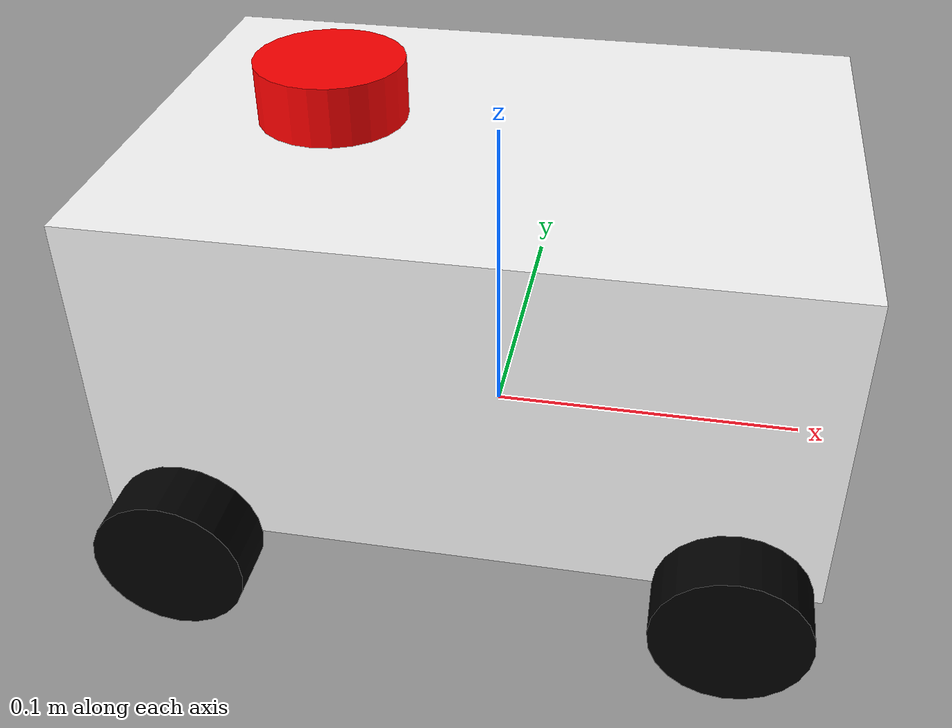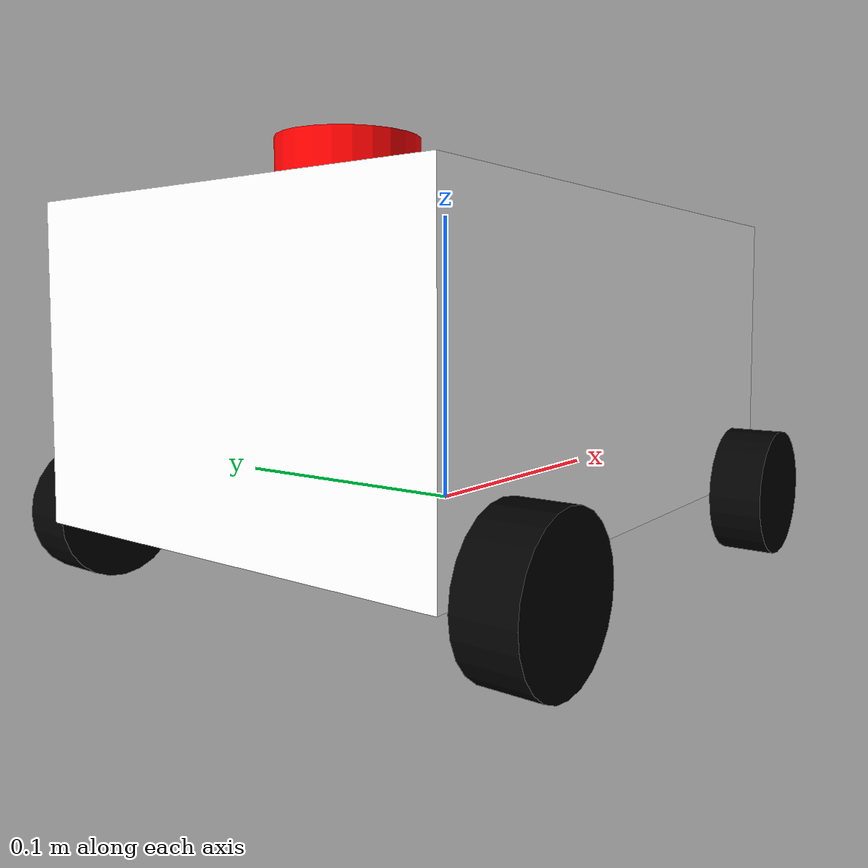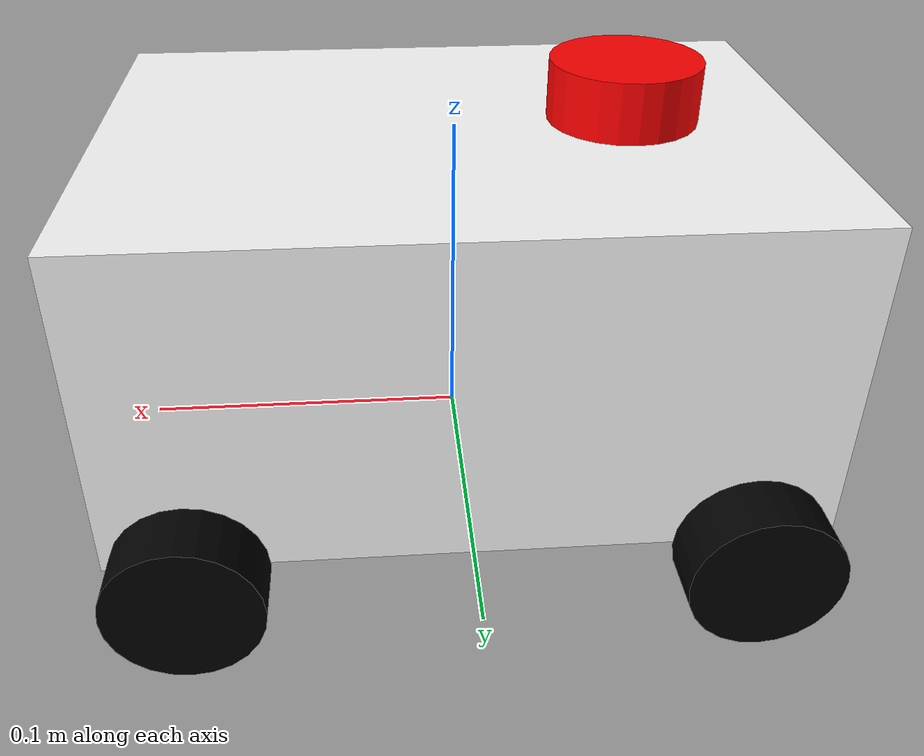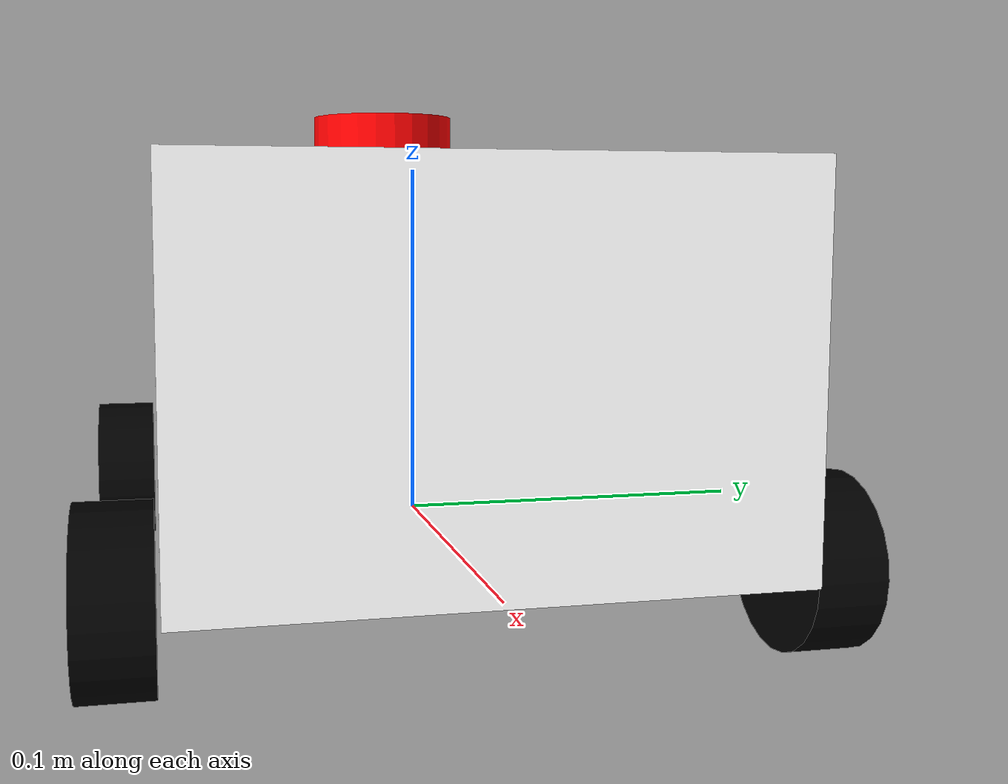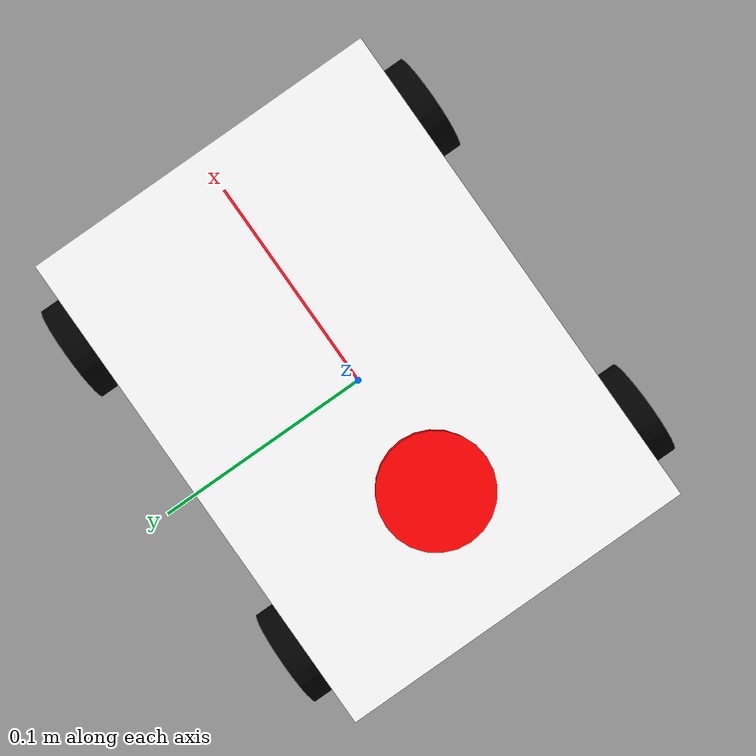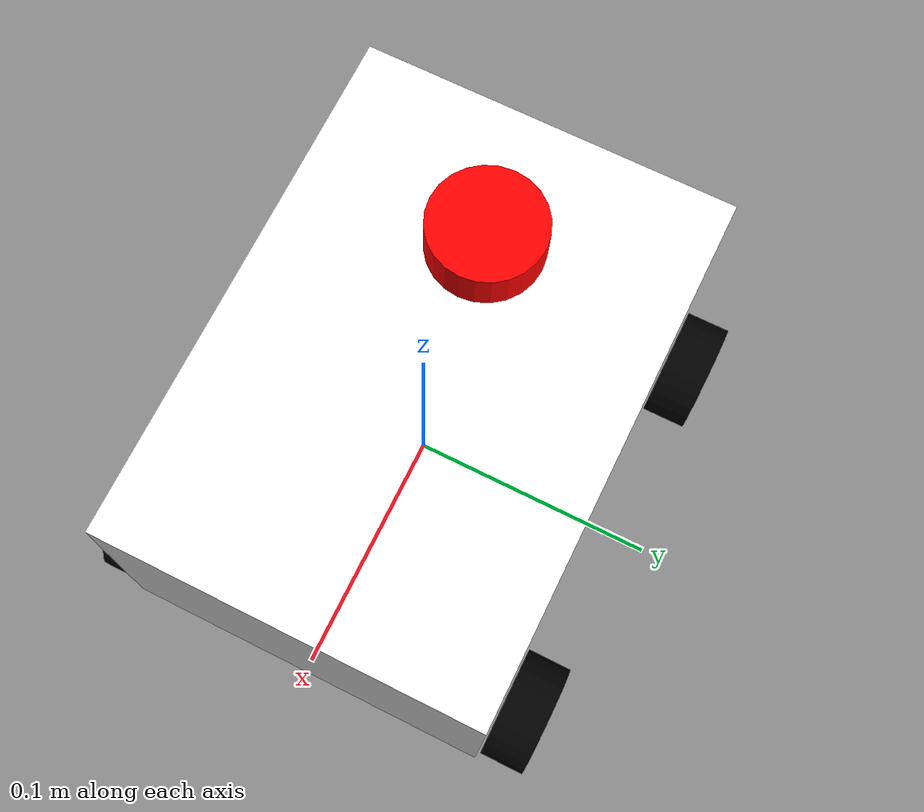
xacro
<?xml version="1.0"?>
<robot xmlns:xacro="http://www.ros.org/wiki/xacro"  name="robot">

    <xacro:arg name="use_ros2_control" default="true"/>
    <xacro:arg name="sim_mode" default="false"/>

    <xacro:include filename="robot_core.xacro" />

    <xacro:if value="$(arg use_ros2_control)">
        <xacro:include filename="ros2_control.xacro" />
    </xacro:if>
    <xacro:unless value="$(arg use_ros2_control)">
        <xacro:include filename="gazebo_control.xacro" />
    </xacro:unless>

    <xacro:include filename="lidar.xacro" />

</robot>

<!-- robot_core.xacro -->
<robot xmlns:xacro="http://www.ros.org/wiki/xacro">

    <xacro:include filename="inertial_macros.xacro" />

    <material name="white">
        <color rgba="1 1 1 1"/>
    </material>

    <material name="orange">
        <color rgba="1 0.3 0.1 1"/>
    </material>

    <material name="blue">
        <color rgba="0.2 0.2 1 1"/>
    </material>

    <material name="black">
        <color rgba="0 0 0 1"/>
    </material>

    <material name="red">
        <color rgba="1 0 0 1"/>
    </material>

    <!-- Base Link -->

    <link name="base_link">
    </link>

     <!-- BASE_FOOTPRINT LINK -->

    <link name="base_footprint">
    </link>

    <joint name="base_footprint_joint" type="fixed">
        <parent link="base_link"/>
        <child link="base_footprint"/>
        <origin xyz="0 0 0" rpy="0 0 3.14159265359"/>
    </joint>

    <!-- Chassis Link -->

    <joint name="chassis_joint" type="fixed">
        <parent link="base_link"/>
        <child link="chassis"/>
        <origin xyz="0 0 0"/>
    </joint>

    <link name="chassis">
        <visual>
            <origin xyz="0 0 0.05" rpy="0 0 0"/>
            <geometry>
                <box size="0.21 0.15 0.10"/>
            </geometry>
            <material name="white"/>
        </visual>
        <collision>
            <origin xyz="0 0 0.05" rpy="0 0 0"/>
            <geometry>
                <box size="0.21 0.15 0.10"/>
            </geometry>
        </collision>
        <xacro:inertial_box mass="0.3" x="0.21" y="0.15" z="0.10">
            <origin xyz="0.15 0 0.05" rpy="0 0 0"/>
        </xacro:inertial_box>
    </link>

    <gazebo reference="chassis">
        <material>Gazebo/White</material>
        <mu1>0.2</mu1>
        <mu2>0.2</mu2>
    </gazebo>

    <!-- LEFT FRONT WHEEL -->

    <joint name="left_front_wheel_joint" type="continuous">
        <parent link="base_link"/>
        <child link="left_front_wheel"/>
        <origin xyz="-0.08 -0.085 0" rpy="${pi/2} 0 0"/>
        <axis xyz="0 0 1"/>
    </joint>

    <link name="left_front_wheel" type="revolute">
        <visual>
            <geometry>
                <cylinder length="0.018" radius="0.0225" />
            </geometry>
            <material name="black"/>
        </visual>
        <collision>
            <geometry>
                <sphere radius="0.0225" />
            </geometry>
        </collision>
        <xacro:inertial_cylinder mass="0.1" length="0.018" radius="0.0225">
            <origin xyz="0 0 0" rpy="0 0 0"/>
        </xacro:inertial_cylinder>
    </link>

    <gazebo reference="left_front_wheel">
        <material>Gazebo/Black</material>
        <mu1>0.2</mu1>
        <mu2>0.2</mu2>
    </gazebo>

    <!-- LEFT REAR WHEEL -->

    <joint name="left_rear_wheel_joint" type="continuous">
        <parent link="base_link"/>
        <child link="left_rear_wheel"/>
        <origin xyz="0.08 -0.085 0" rpy="${pi/2} 0 0"/>
        <axis xyz="0 0 1"/>
    </joint>

    <link name="left_rear_wheel" type="revolute">
        <visual>
            <geometry>
                <cylinder length="0.018" radius="0.0225" />
            </geometry>
            <material name="black"/>
        </visual>
        <collision>
            <geometry>
                <sphere radius="0.0225" />
            </geometry>
        </collision>
        <xacro:inertial_cylinder mass="0.1" length="0.018" radius="0.0225">
            <origin xyz="0 0 0" rpy="0 0 0"/>
        </xacro:inertial_cylinder>
    </link>

    <gazebo reference="left_rear_wheel">
        <material>Gazebo/Black</material>
        <mu1>0.2</mu1>
        <mu2>0.2</mu2>
    </gazebo>

    <!-- RIGHT FRONT WHEEL -->

    <joint name="right_front_wheel_joint" type="continuous">
        <parent link="base_link"/>
        <child link="right_front_wheel"/>
        <origin xyz="-0.08 0.085 0" rpy="${pi/2} 0 0"/>
        <axis xyz="0 0 1"/>
    </joint>

    <link name="right_front_wheel" type="revolute">
        <visual>
            <geometry>
                <cylinder length="0.018" radius="0.0225" />
            </geometry>
            <material name="black"/>
        </visual>
        <collision>
            <geometry>
                <sphere radius="0.0225" />
            </geometry>
        </collision>
        <xacro:inertial_cylinder mass="0.1" length="0.018" radius="0.0225">
            <origin xyz="0 0 0" rpy="0 0 0"/>
        </xacro:inertial_cylinder>
    </link>

    <gazebo reference="right_front_wheel">
        <material>Gazebo/Black</material>
        <mu1>0.2</mu1>
        <mu2>0.2</mu2>
    </gazebo>

    <!-- RIGHT REAR WHEEL -->

    <joint name="right_rear_wheel_joint" type="continuous">
        <parent link="base_link"/>
        <child link="right_rear_wheel"/>
        <origin xyz="0.08 0.085 0" rpy="${pi/2} 0 0"/>
        <axis xyz="0 0 1"/>
    </joint>

    <link name="right_rear_wheel" type="revolute">
        <visual>
            <geometry>
                <cylinder length="0.018" radius="0.0225" />
            </geometry>
            <material name="black"/>
        </visual>
        <collision>
            <geometry>
                <sphere radius="0.0225" />
            </geometry>
        </collision>
        <xacro:inertial_cylinder mass="0.1" length="0.018" radius="0.0225">
            <origin xyz="0 0 0" rpy="0 0 0"/>
        </xacro:inertial_cylinder>
    </link>

    <gazebo reference="right_rear_wheel">
        <material>Gazebo/Black</material>
        <mu1>0.2</mu1>
        <mu2>0.2</mu2>
    </gazebo>

</robot>

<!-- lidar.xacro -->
<robot xmlns:xacro="http://www.ros.org/wiki/xacro" >

    <joint name="laser_joint" type="fixed">
        <parent link="chassis"/>
        <child link="laser_frame"/>
        <origin xyz="-0.05 0 0.11" rpy="0 0 0"/>
    </joint>

    <link name="laser_frame">
        <visual>
            <geometry>
                <cylinder radius="0.0225" length="0.018"/>
            </geometry>
            <material name="red"/>
        </visual>
        <collision>
            <geometry>
                <cylinder radius="0.0225" length="0.018"/>
            </geometry>
        </collision>
        <xacro:inertial_cylinder mass="0.1" length="0.018" radius="0.0225">
            <origin xyz="0 0 0" rpy="0 0 0"/>
        </xacro:inertial_cylinder>
    </link>

    <gazebo reference="laser_frame">
        <material>Gazebo/Red</material>

        <sensor name="laser" type="ray">
            <pose> 0 0 0 0 0 0 </pose>
            <visualize>true</visualize>
            <update_rate>10</update_rate>
            <ray>
                <scan>
                    <horizontal>
                        <samples>360</samples>
                        <min_angle>-3.14</min_angle>
                        <max_angle>3.14</max_angle>
                    </horizontal>
                </scan>
                <range>
                    <min>0.3</min>
                    <max>12</max>
                </range>
            </ray>
            <plugin name="laser_controller" filename="libgazebo_ros_ray_sensor.so">
                <ros>
                    <argument>~/out:=scan</argument>
                </ros>
                <output_type>sensor_msgs/LaserScan</output_type>
                <frame_name>laser_frame</frame_name>
            </plugin>
        </sensor>
    </gazebo>

</robot>
